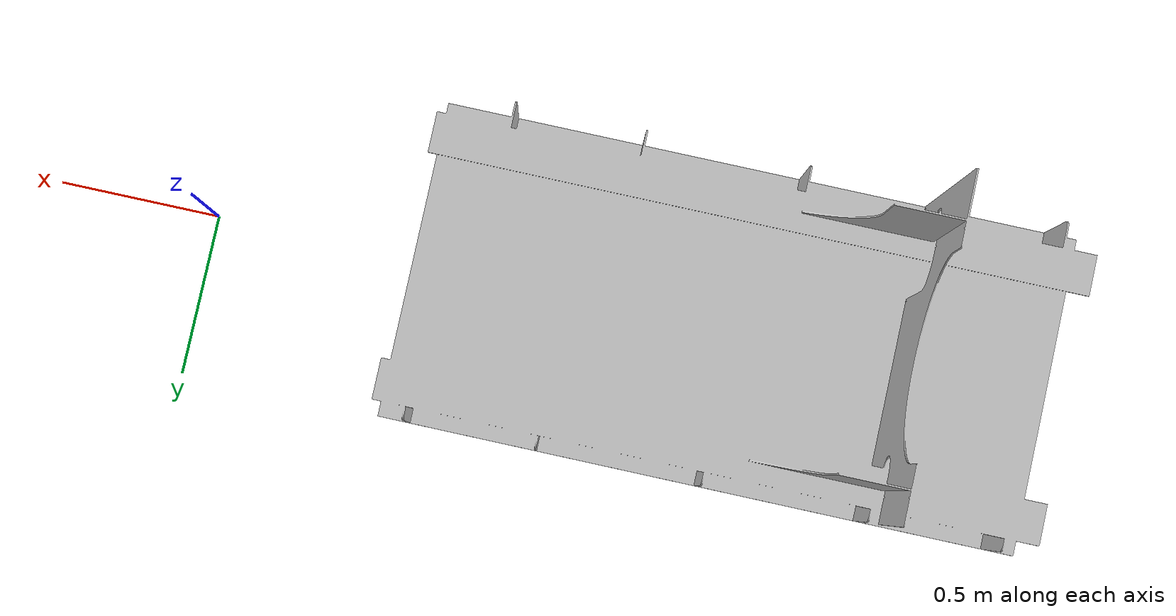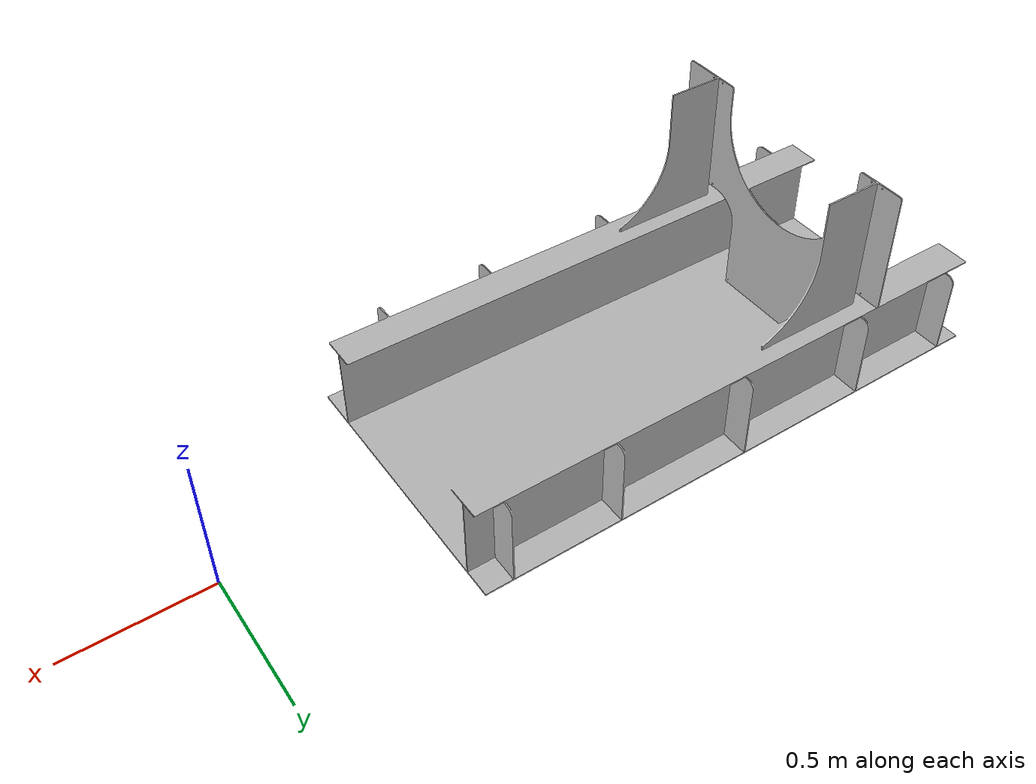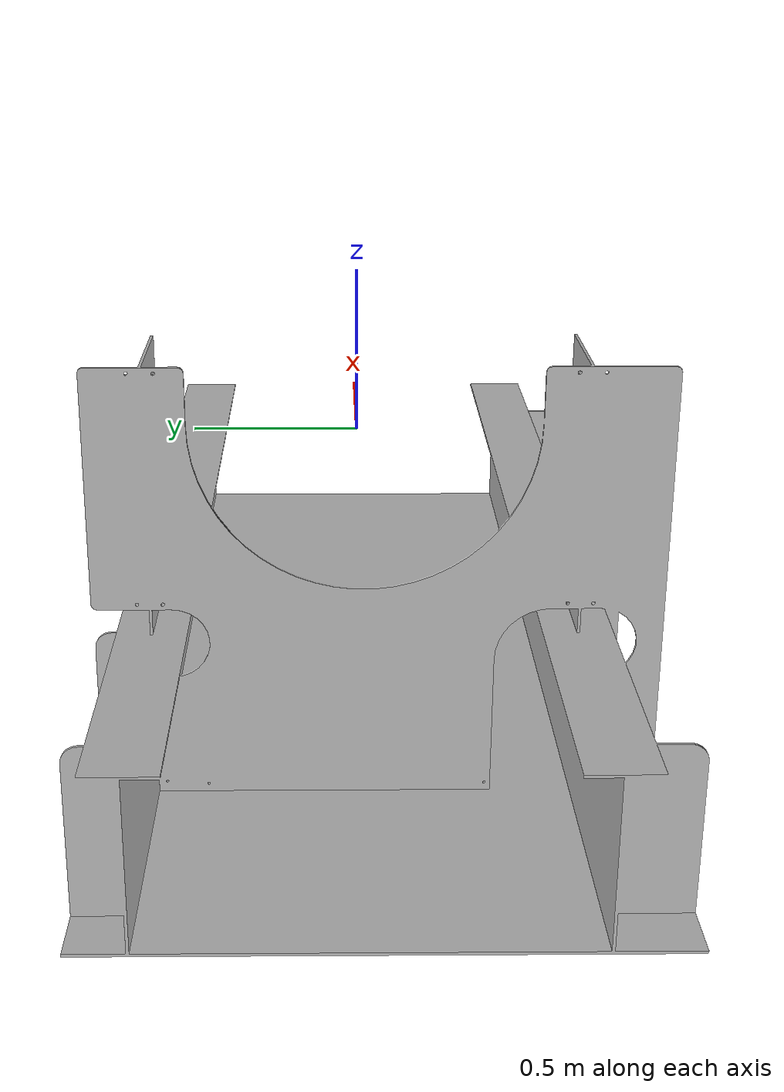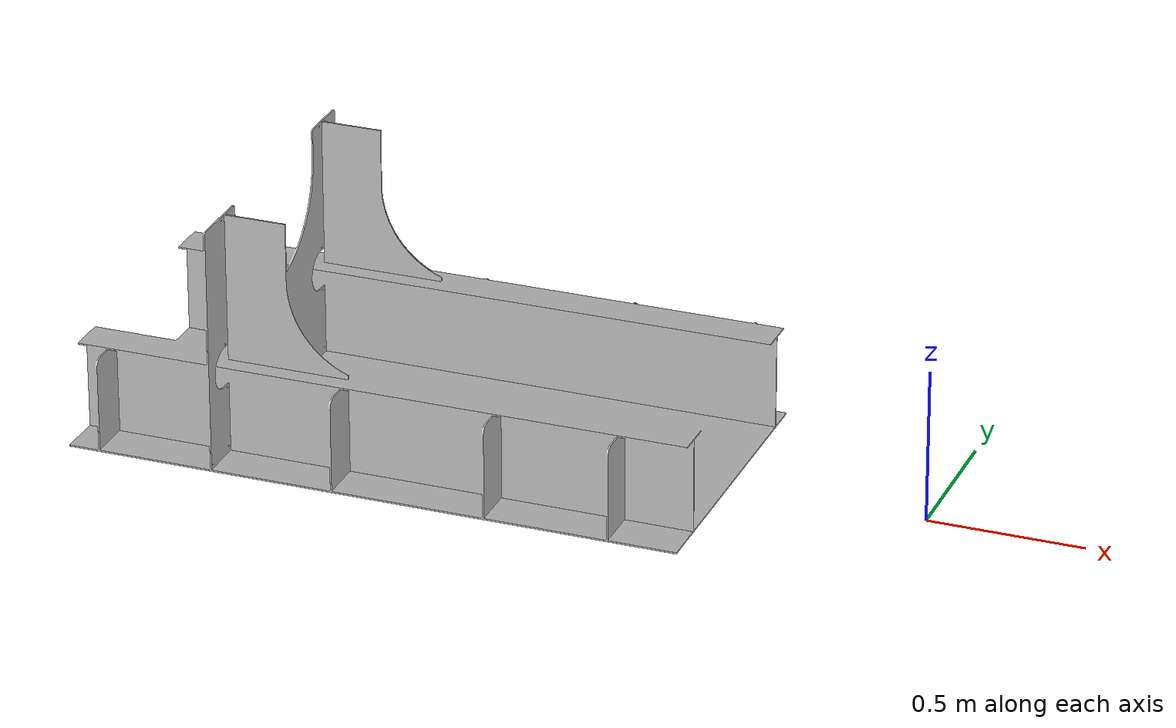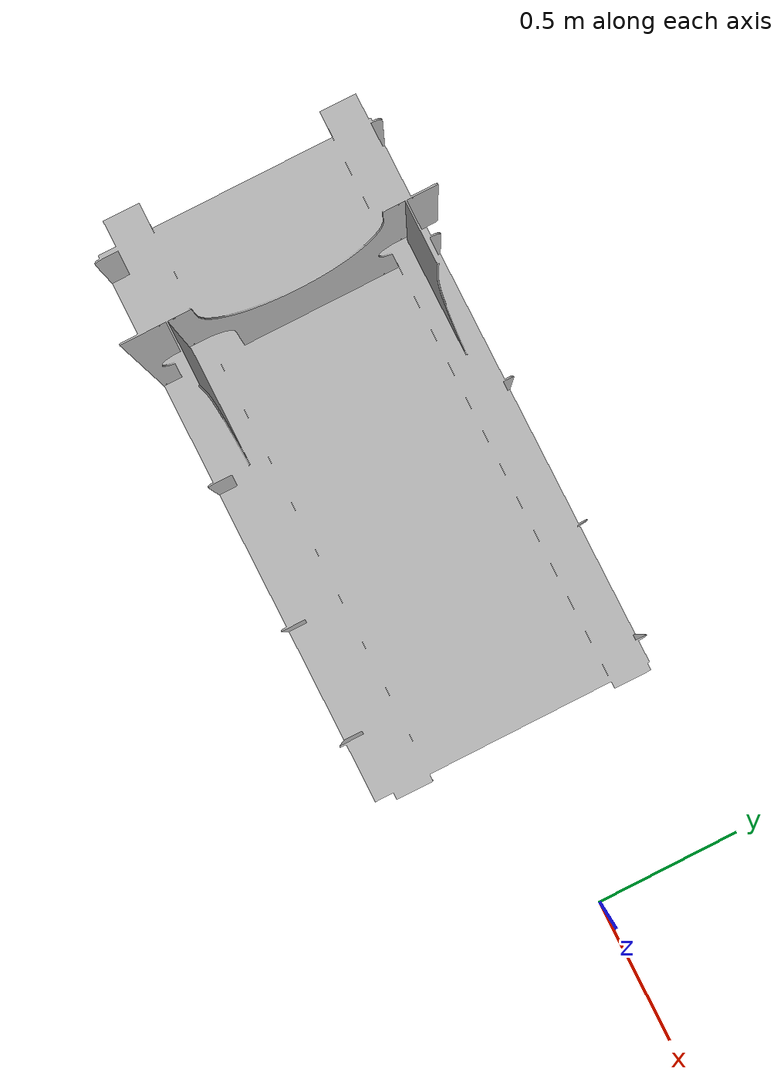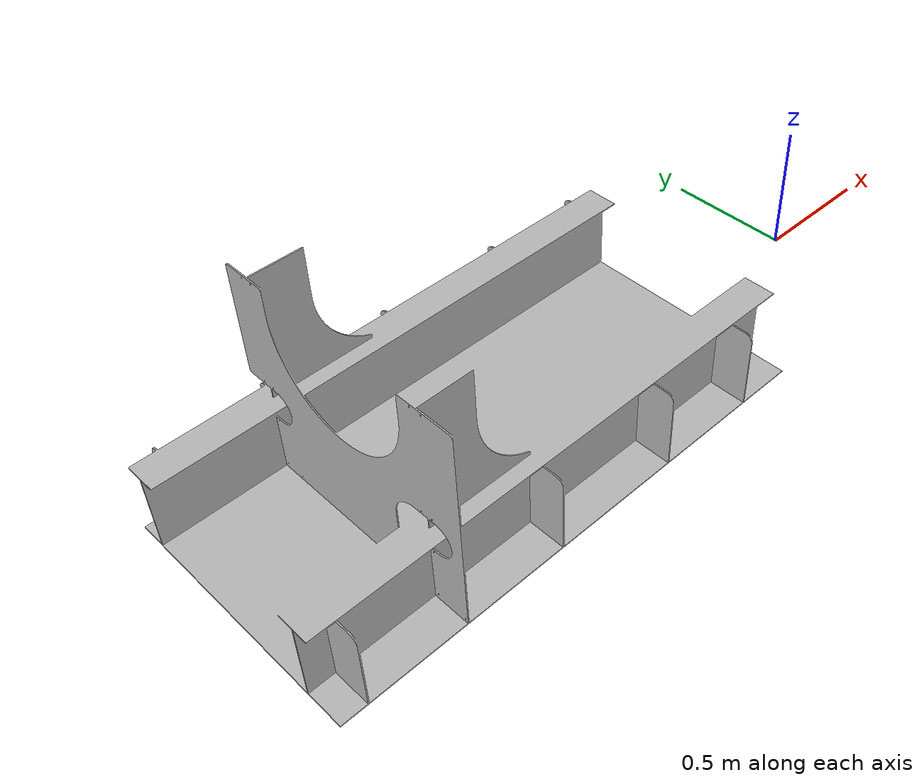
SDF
<sdf version="1.6">
 <world name="default">
  <light name="sun" type="directional">
   <pose>0 0 10 0 -0 0</pose>
   <diffuse>0.8 0.8 0.8 1</diffuse>
   <specular>0.2 0.2 0.2 1</specular>
   <attenuation>
    <range>1000</range>
    <constant>0.9</constant>
    <linear>0.01</linear>
    <quadratic>0.001</quadratic>
   </attenuation>
   <direction>-0.5 0.1 -0.9</direction>
  </light>
  <model name="ground_plane">
   <static>1</static>
   <link name="link">
    <collision name="collision">
     <geometry><plane><normal>0 0 1</normal><size>100 100</size></plane></geometry>
     <surface><friction><ode><mu>100</mu><mu2>50</mu2></ode></friction></surface>
    </collision>
   </link>
  </model>
  <gravity>0 0 -9.8</gravity>
  <magnetic_field>6e-06 2.3e-05 -4.2e-05</magnetic_field>
  <atmosphere type="adiabatic"/>
  <physics name="default_physics" default="0" type="ode">
   <max_step_size>0.001</max_step_size>
   <real_time_factor>1</real_time_factor>
   <real_time_update_rate>1000</real_time_update_rate>
  </physics>
  <scene><ambient>0.4 0.4 0.4 1</ambient><background>0.7 0.7 0.7 1</background><shadows>1</shadows></scene>
  <spherical_coordinates>
   <surface_model>EARTH_WGS84</surface_model>
   <latitude_deg>0</latitude_deg>
   <longitude_deg>0</longitude_deg>
   <elevation>0</elevation>
   <heading_deg>0</heading_deg>
  </spherical_coordinates>
  <model name="double_hull">
   <static>1</static>
   <link name="double_hull">
    <pose>0 0 0.0275 1.571 -0 0</pose>
    <collision name="collision">
     <geometry><mesh><uri>model://double_hull/mesh/Double Bottom Mock Block Cutout.stl</uri></mesh></geometry>
     <surface><friction><ode><mu>2</mu><mu2>2</mu2></ode></friction></surface>
    </collision>
    <inertial>
     <mass>10000</mass>
     <inertia><ixx>1</ixx><ixy>0</ixy><ixz>0</ixz><iyy>1</iyy><iyz>0</iyz><izz>1</izz></inertia>
    </inertial>
    <visual name="visual">
     <geometry><mesh><uri>model://double_hull/mesh/Double Bottom Mock Block Cutout.stl</uri></mesh></geometry>
    </visual>
   </link>
   <pose>-1.93209 -0.001146 -0 0 -0 0</pose>
  </model>
 </world>
</sdf>
